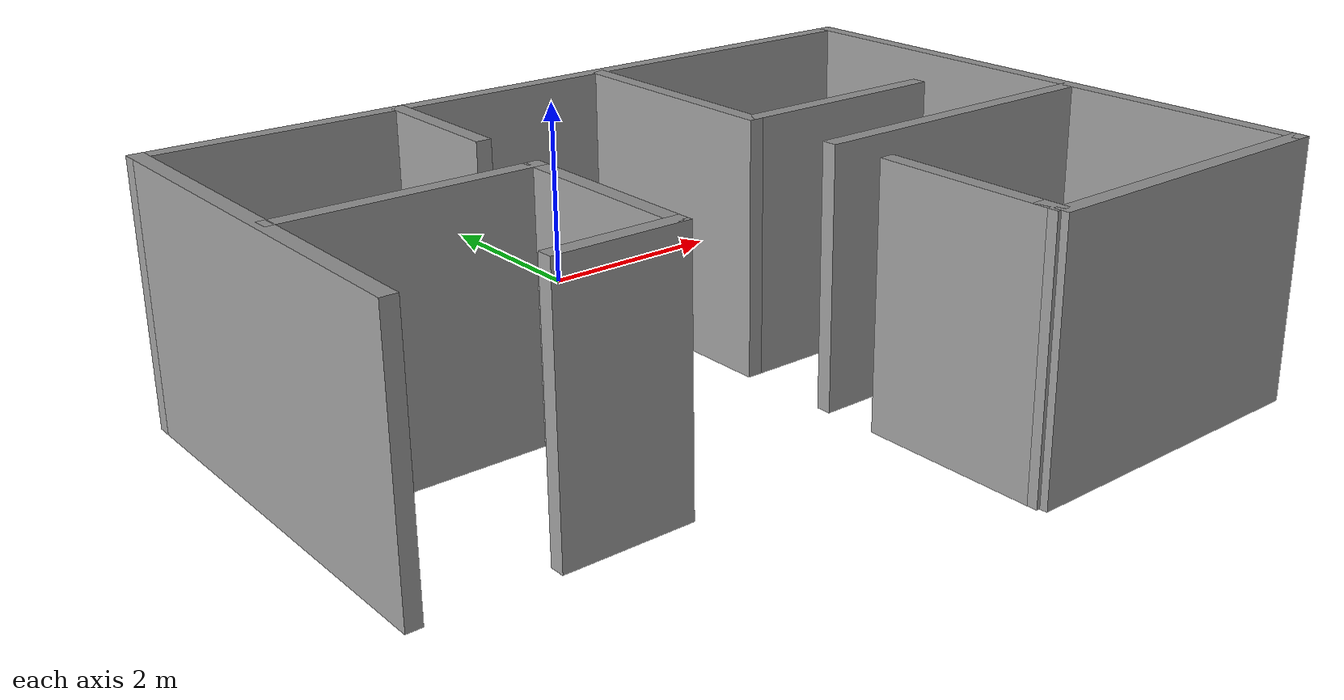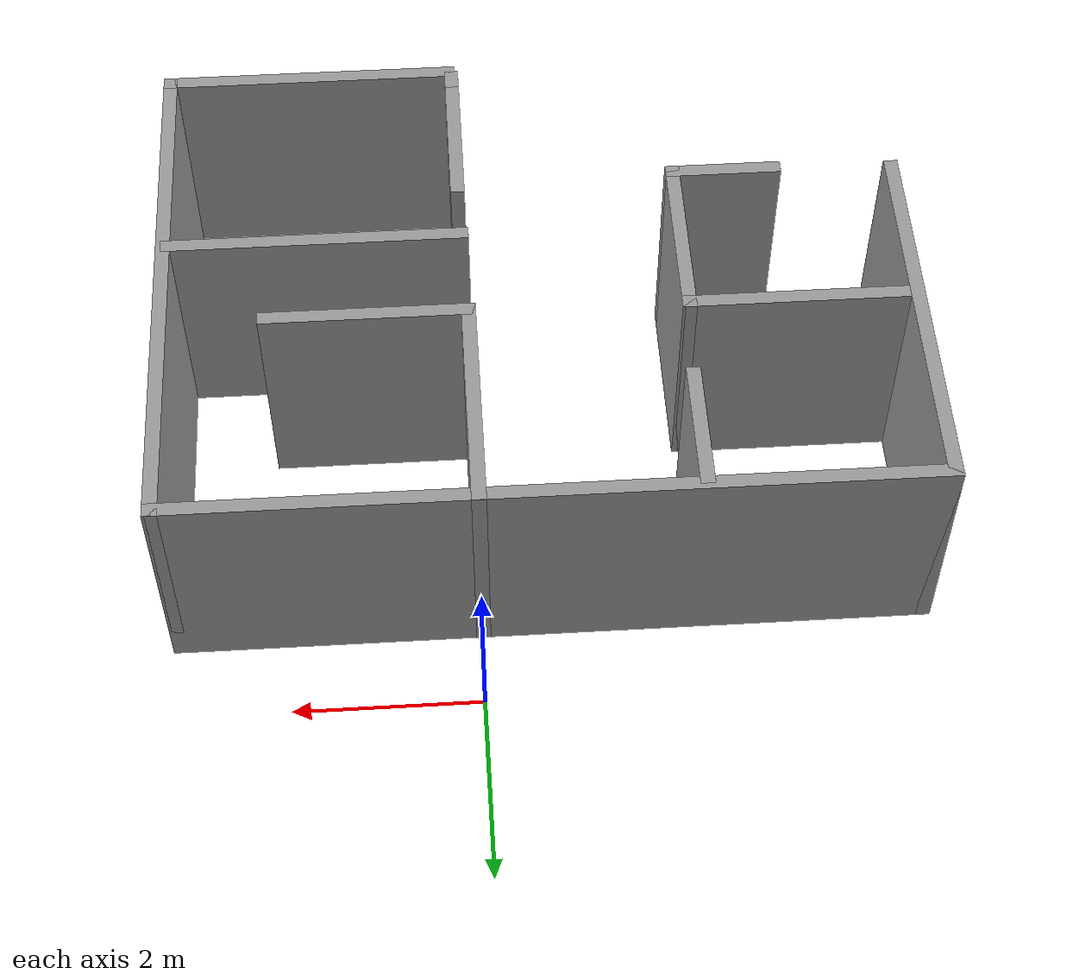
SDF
<?xml version='1.0'?>
<sdf version='1.7'>
  <model name='room'>
    <pose>-0.765 -3.3975 0 0 -0 0</pose>
    <link name='Wall_1'>
      <collision name='Wall_1_Collision'>
        <geometry>
          <box>
            <size>8 0.15 2.5</size>
          </box>
        </geometry>
        <pose>0 0 1.25 0 -0 0</pose>
      </collision>
      <visual name='Wall_1_Visual'>
        <pose>0 0 1.25 0 -0 0</pose>
        <geometry>
          <box>
            <size>8 0.15 2.5</size>
          </box>
        </geometry>
        <material>
          <script>
            <uri>file://media/materials/scripts/gazebo.material</uri>
            <name>Gazebo/Grey</name>
          </script>
          <ambient>1 1 1 1</ambient>
        </material>
        <meta>
          <layer>0</layer>
        </meta>
      </visual>
      <pose>0 2.5275 0 0 -0 0</pose>
    </link>
    <link name='Wall_11'>
      <collision name='Wall_11_Collision'>
        <geometry>
          <box>
            <size>2 0.15 2.5</size>
          </box>
        </geometry>
        <pose>0 0 1.25 0 -0 0</pose>
      </collision>
      <visual name='Wall_11_Visual'>
        <pose>0 0 1.25 0 -0 0</pose>
        <geometry>
          <box>
            <size>2 0.15 2.5</size>
          </box>
        </geometry>
        <material>
          <script>
            <uri>file://media/materials/scripts/gazebo.material</uri>
            <name>Gazebo/Grey</name>
          </script>
          <ambient>1 1 1 1</ambient>
        </material>
        <meta>
          <layer>0</layer>
        </meta>
      </visual>
      <pose>-1.54533 -0.708606 0 0 -0 -1.5708</pose>
    </link>
    <link name='Wall_12'>
      <collision name='Wall_12_Collision'>
        <geometry>
          <box>
            <size>1.25 0.15 2.5</size>
          </box>
        </geometry>
        <pose>0 0 1.25 0 -0 0</pose>
      </collision>
      <visual name='Wall_12_Visual'>
        <pose>0 0 1.25 0 -0 0</pose>
        <geometry>
          <box>
            <size>1.25 0.15 2.5</size>
          </box>
        </geometry>
        <material>
          <script>
            <uri>file://media/materials/scripts/gazebo.material</uri>
            <name>Gazebo/Grey</name>
          </script>
          <ambient>1 1 1 1</ambient>
        </material>
        <meta>
          <layer>0</layer>
        </meta>
      </visual>
      <pose>-2.09533 -1.63361 0 0 -0 3.14159</pose>
    </link>
    <link name='Wall_14'>
      <collision name='Wall_14_Collision'>
        <geometry>
          <box>
            <size>2.5 0.15 2.5</size>
          </box>
        </geometry>
        <pose>0 0 1.25 0 -0 0</pose>
      </collision>
      <visual name='Wall_14_Visual'>
        <pose>0 0 1.25 0 -0 0</pose>
        <geometry>
          <box>
            <size>2.5 0.15 2.5</size>
          </box>
        </geometry>
        <material>
          <script>
            <uri>file://media/materials/scripts/gazebo.material</uri>
            <name>Gazebo/Grey</name>
          </script>
          <ambient>1 1 1 1</ambient>
        </material>
        <meta>
          <layer>0</layer>
        </meta>
      </visual>
      <pose>0.743336 1.35312 0 0 -0 -1.5708</pose>
    </link>
    <link name='Wall_15'>
      <collision name='Wall_15_Collision'>
        <geometry>
          <box>
            <size>2.25 0.15 2.5</size>
          </box>
        </geometry>
        <pose>0 0 1.25 0 -0 0</pose>
      </collision>
      <visual name='Wall_15_Visual'>
        <pose>0 0 1.25 0 -0 0</pose>
        <geometry>
          <box>
            <size>2.25 0.15 2.5</size>
          </box>
        </geometry>
        <material>
          <script>
            <uri>file://media/materials/scripts/gazebo.material</uri>
            <name>Gazebo/Grey</name>
          </script>
          <ambient>1 1 1 1</ambient>
        </material>
        <meta>
          <layer>0</layer>
        </meta>
      </visual>
      <pose>1.79334 0.178124 0 0 -0 0</pose>
    </link>
    <link name='Wall_17'>
      <collision name='Wall_17_Collision'>
        <geometry>
          <box>
            <size>3.25 0.15 2.5</size>
          </box>
        </geometry>
        <pose>0 0 1.25 0 -0 0</pose>
      </collision>
      <visual name='Wall_17_Visual'>
        <pose>0 0 1.25 0 -0 0</pose>
        <geometry>
          <box>
            <size>3.25 0.15 2.5</size>
          </box>
        </geometry>
        <material>
          <script>
            <uri>file://media/materials/scripts/gazebo.material</uri>
            <name>Gazebo/Grey</name>
          </script>
          <ambient>1 1 1 1</ambient>
        </material>
        <meta>
          <layer>0</layer>
        </meta>
      </visual>
      <pose>2.32375 -0.878636 0 0 -0 0</pose>
    </link>
    <link name='Wall_19'>
      <collision name='Wall_19_Collision'>
        <geometry>
          <box>
            <size>1.75 0.15 2.5</size>
          </box>
        </geometry>
        <pose>0 0 1.25 0 -0 0</pose>
      </collision>
      <visual name='Wall_19_Visual'>
        <pose>0 0 1.25 0 -0 0</pose>
        <geometry>
          <box>
            <size>1.75 0.15 2.5</size>
          </box>
        </geometry>
        <material>
          <script>
            <uri>file://media/materials/scripts/gazebo.material</uri>
            <name>Gazebo/Grey</name>
          </script>
          <ambient>1 1 1 1</ambient>
        </material>
        <meta>
          <layer>0</layer>
        </meta>
      </visual>
      <pose>0.788962 -2.34782 0 0 -0 -1.5708</pose>
    </link>
    <link name='Wall_2'>
      <collision name='Wall_2_Collision'>
        <geometry>
          <box>
            <size>6 0.15 2.5</size>
          </box>
        </geometry>
        <pose>0 0 1.25 0 -0 0</pose>
      </collision>
      <visual name='Wall_2_Visual'>
        <pose>0 0 1.25 0 -0 0</pose>
        <geometry>
          <box>
            <size>6 0.15 2.5</size>
          </box>
        </geometry>
        <material>
          <script>
            <uri>file://media/materials/scripts/gazebo.material</uri>
            <name>Gazebo/Grey</name>
          </script>
          <ambient>1 1 1 1</ambient>
        </material>
        <meta>
          <layer>0</layer>
        </meta>
      </visual>
      <pose>3.925 -0.3975 0 0 -0 -1.5708</pose>
    </link>
    <link name='Wall_20'>
      <collision name='Wall_20_Collision'>
        <geometry>
          <box>
            <size>0.25 0.15 2.5</size>
          </box>
        </geometry>
        <pose>0 0 1.25 0 -0 0</pose>
      </collision>
      <visual name='Wall_20_Visual'>
        <pose>0 0 1.25 0 -0 0</pose>
        <geometry>
          <box>
            <size>0.25 0.15 2.5</size>
          </box>
        </geometry>
        <material>
          <script>
            <uri>file://media/materials/scripts/gazebo.material</uri>
            <name>Gazebo/Grey</name>
          </script>
          <ambient>1 1 1 1</ambient>
        </material>
        <meta>
          <layer>0</layer>
        </meta>
      </visual>
      <pose>0.788962 -3.19782 0 0 -0 -1.5708</pose>
    </link>
    <link name='Wall_22'>
      <collision name='Wall_22_Collision'>
        <geometry>
          <box>
            <size>3.25 0.15 2.5</size>
          </box>
        </geometry>
        <pose>0 0 1.25 0 -0 0</pose>
      </collision>
      <visual name='Wall_22_Visual'>
        <pose>0 0 1.25 0 -0 0</pose>
        <geometry>
          <box>
            <size>3.25 0.15 2.5</size>
          </box>
        </geometry>
        <material>
          <script>
            <uri>file://media/materials/scripts/gazebo.material</uri>
            <name>Gazebo/Grey</name>
          </script>
          <ambient>1 1 1 1</ambient>
        </material>
        <meta>
          <layer>0</layer>
        </meta>
      </visual>
      <pose>2.375 -3.3225 0 0 -0 3.14159</pose>
    </link>
    <link name='Wall_25'>
      <collision name='Wall_25_Collision'>
        <geometry>
          <box>
            <size>4.25 0.15 2.5</size>
          </box>
        </geometry>
        <pose>0 0 1.25 0 -0 0</pose>
      </collision>
      <visual name='Wall_25_Visual'>
        <pose>0 0 1.25 0 -0 0</pose>
        <geometry>
          <box>
            <size>4.25 0.15 2.5</size>
          </box>
        </geometry>
        <material>
          <script>
            <uri>file://media/materials/scripts/gazebo.material</uri>
            <name>Gazebo/Grey</name>
          </script>
          <ambient>1 1 1 1</ambient>
        </material>
        <meta>
          <layer>0</layer>
        </meta>
      </visual>
      <pose>-3.925 0.4775 0 0 -0 -1.5708</pose>
    </link>
    <link name='Wall_7'>
      <collision name='Wall_7_Collision'>
        <geometry>
          <box>
            <size>1.5 0.15 2.5</size>
          </box>
        </geometry>
        <pose>0 0 1.25 0 -0 0</pose>
      </collision>
      <visual name='Wall_7_Visual'>
        <pose>0 0 1.25 0 -0 0</pose>
        <geometry>
          <box>
            <size>1.5 0.15 2.5</size>
          </box>
        </geometry>
        <material>
          <script>
            <uri>file://media/materials/scripts/gazebo.material</uri>
            <name>Gazebo/Grey</name>
          </script>
          <ambient>1 1 1 1</ambient>
        </material>
        <meta>
          <layer>0</layer>
        </meta>
      </visual>
      <pose>-1.49235 1.83791 0 0 -0 -1.5708</pose>
    </link>
    <link name='Wall_9'>
      <collision name='Wall_9_Collision'>
        <geometry>
          <box>
            <size>2.5 0.15 2.5</size>
          </box>
        </geometry>
        <pose>0 0 1.25 0 -0 0</pose>
      </collision>
      <visual name='Wall_9_Visual'>
        <pose>0 0 1.25 0 -0 0</pose>
        <geometry>
          <box>
            <size>2.5 0.15 2.5</size>
          </box>
        </geometry>
        <material>
          <script>
            <uri>file://media/materials/scripts/gazebo.material</uri>
            <name>Gazebo/Grey</name>
          </script>
          <ambient>1 1 1 1</ambient>
        </material>
        <meta>
          <layer>0</layer>
        </meta>
      </visual>
      <pose>-2.72033 0.216394 0 0 -0 0</pose>
    </link>
    <static>1</static>
  </model>
</sdf>
